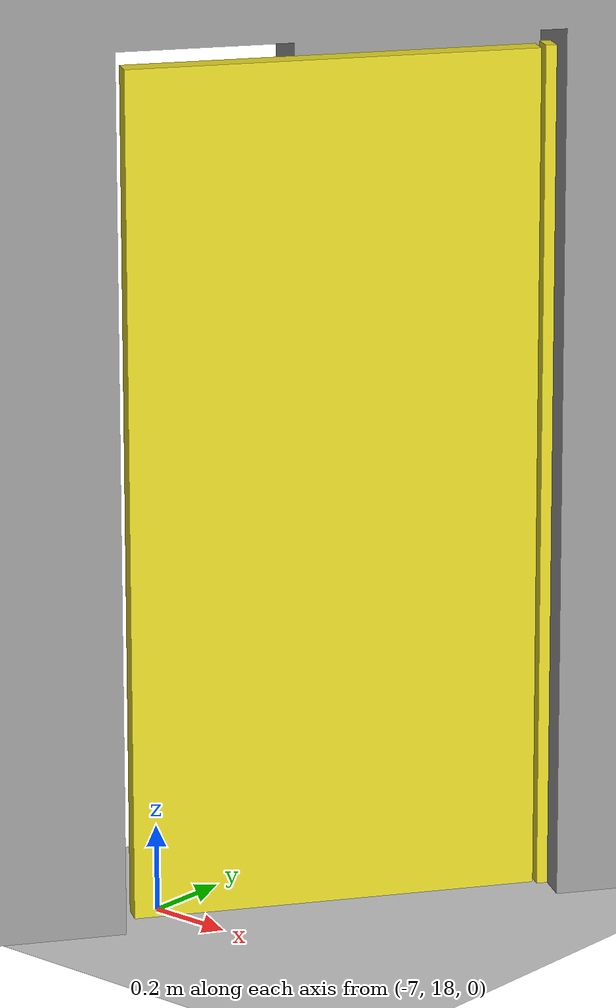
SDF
<?xml version='1.0' encoding='utf-8'?>
<sdf version="1.6">
  <world name="floorplan:brsu_building_c_with_doorways_with_objects">
    <gravity>0 0 -9.8</gravity>
    <physics default="0" name="default_physics" type="ode">
      <max_step_size>0.001</max_step_size>
      <real_time_factor>1</real_time_factor>
      <real_time_update_rate>1000</real_time_update_rate>
    </physics>
    <scene>
      <ambient>0.6 0.6 0.6 1</ambient>
      <background>0.4 0.4 0.4 1</background>
      <shadows>false</shadows>
    </scene>
    <include>
      <uri>model://sun</uri>
    </include>
    <include>
      <uri>model://ground_plane</uri>
      <pose>0 0 0 0 0 0</pose>
    </include>
    <include>
      <uri>model://brsu_building_c_with_doorways</uri>
      <static>true</static>
      <pose>-0.0 0.0 0.0 0.0 0.0 0.0</pose>
    </include>

    <include>
      <name>door-instance-1</name>
      <uri>model://door</uri>
      <static>false</static>
      <pose>-6.456217554968435 18.71830066760649 0.0 0.0 -0.0 2.5307274153917776</pose>

        <plugin name="initial_plugin" filename="libinitial_plugin.so">
          <joint>door:joint-door-hinge</joint>
          <position>0.7</position>
        </plugin>

    </include>

  </world>
</sdf>

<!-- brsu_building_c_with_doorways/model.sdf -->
<sdf version="1.6">
  <model name="brsu_building_c_with_doorways">
    <link name="link">
      <visual name="visual">
        <geometry>
          <mesh>
            <uri>file://brsu_building_c_with_doorways.stl</uri>
          </mesh>
        </geometry>
        <material>
          <script>
            <uri>file://media/materials/scripts/gazebo.material</uri>
            <name>Gazebo/Grey</name>
          </script>
        </material>
      </visual>
      <collision name="collision">
        <geometry>
          <mesh>
            <uri>file://brsu_building_c_with_doorways.stl</uri>
          </mesh>
        </geometry>
      </collision>
    </link>
    <static>1</static>
  </model>
</sdf>

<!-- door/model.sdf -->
<sdf version="1.4">
<model name="door:door">
<pose>0 0 0 0 0 0</pose>
<static>false</static>

<link name="door:door-body">
<pose>0.0 0.5 0.975 0.0 -0.0 0.0</pose>
<inertial>
<mass>1.0</mass>
<inertia>
<ixx>0.4069</ixx>
<ixy>0.0</ixy>
<ixz>0.0</ixz>
<iyy>0.3322</iyy>
<iyz>0.0</iyz>
<izz>0.0751</izz>
</inertia>
</inertial>
<collision name="collision">
<geometry>
<box>
<size>0.05 0.93 1.94</size>
</box>
</geometry>
</collision>
<visual name="visual">
<geometry>
<box>
<size>0.05 0.93 1.94</size>
</box>
</geometry><material><script><name>Gazebo/DarkYellow</name></script></material></visual>
</link>

<link name="door:door-hinge">
<pose>0.0 0.0 0.975 0.0 -0.0 0.0</pose>
<inertial>
<mass>100.0</mass>
<inertia>
<ixx>33.22</ixx>
<ixy>0.0</ixy>
<ixz>0.0</ixz>
<iyy>33.22</iyy>
<iyz>0.0</iyz>
<izz>0.0415</izz>
</inertia>
</inertial>
<collision name="collision">
<geometry>
<box>
<size>0.05 0.05 1.95</size>
</box>
</geometry>
</collision>
<visual name="visual">
<geometry>
<box>
<size>0.05 0.05 1.95</size>
</box>
</geometry><material><script><name>Gazebo/Yellow</name></script></material></visual>
</link>

<joint type="revolute" name="door:joint-door-hinge">
<pose frame="door:door-hinge">-0.025 0.025 0.97 0.0 -0.0 0.0</pose>
<child>door:door-body</child>
<parent>door:door-hinge</parent>
<axis>
<xyz>0 0 1</xyz>

<limit>
<lower>0.0</lower>
<upper>2.0</upper>
</limit>

</axis>
</joint>

</model>
</sdf>
